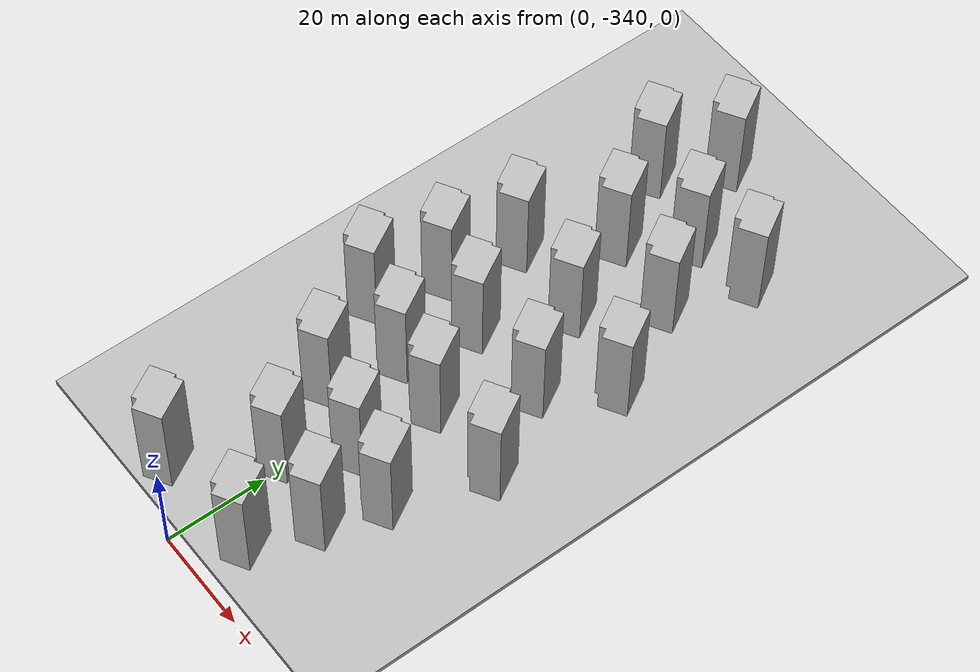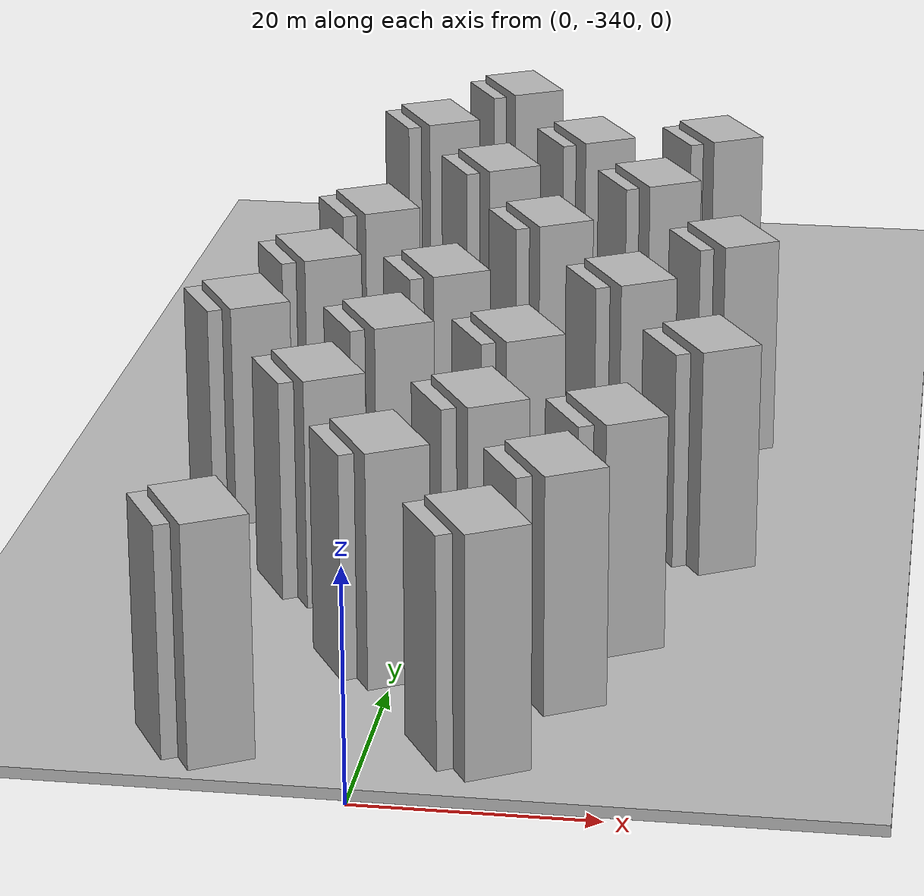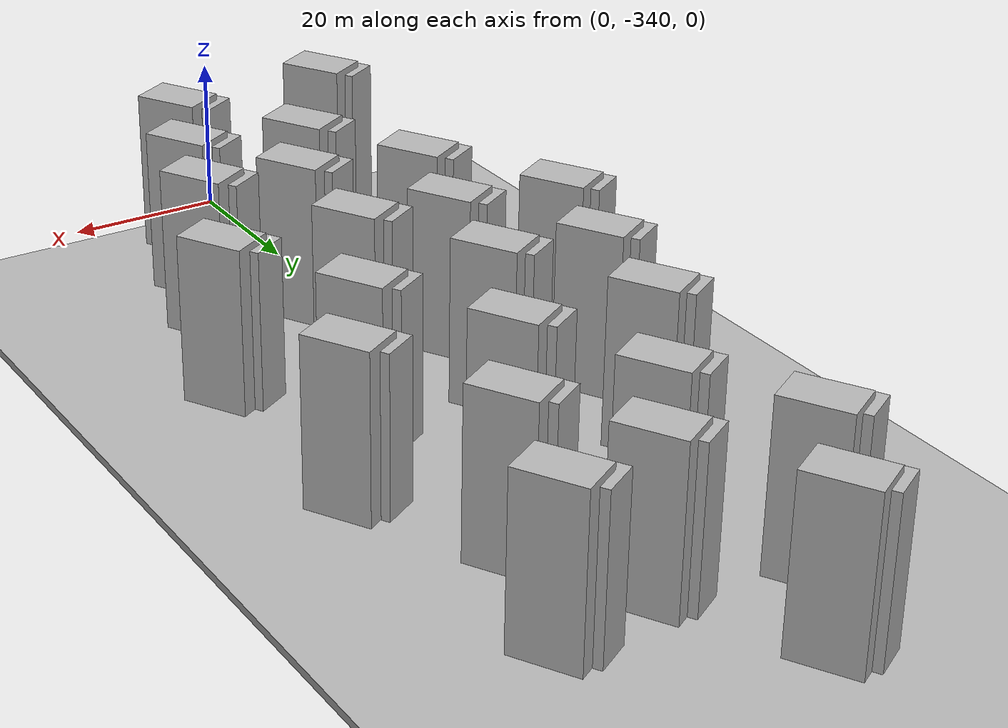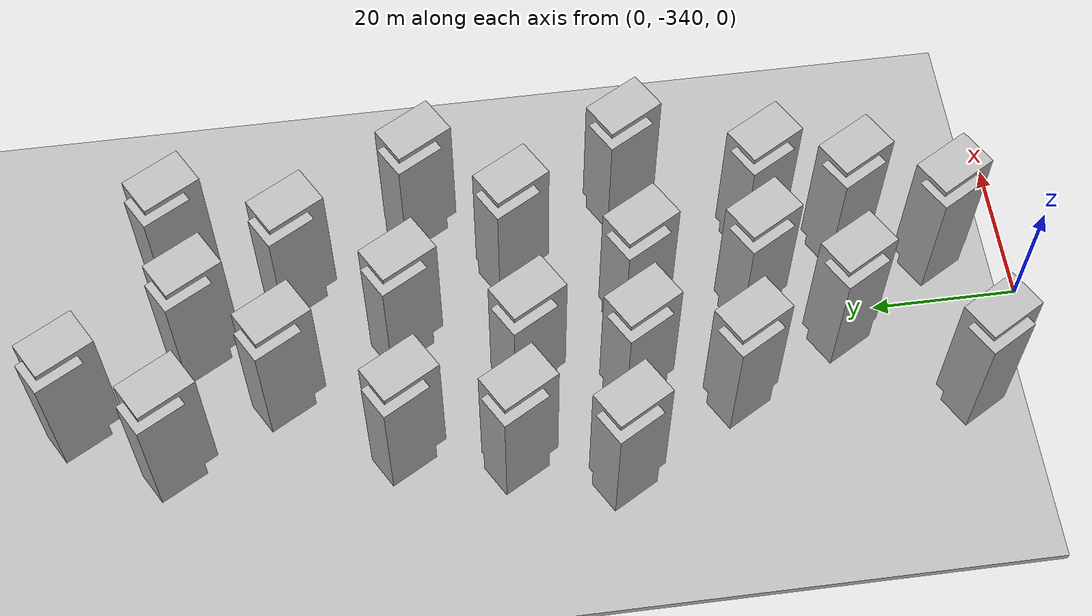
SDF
<sdf version="1.7">
 <world name="default">
  <model name="ground_plane">
   <static>1</static>
   <link name="link">
    <collision name="collision">
     <geometry><mesh><uri>model://ground_plane/scripts/plane.dae</uri><normal>0 0 1</normal></mesh></geometry>
     <surface><friction><ode><mu>100</mu><mu2>50</mu2></ode></friction></surface>
    </collision>
    <visual name="visual">
     <geometry><mesh><uri>model://ground_plane/scripts/plane.dae</uri><normal>0 0 1</normal></mesh></geometry>
     <material>
      <lighting>1</lighting>
      <script><uri>model://ground_plane/scripts/plane.jpg</uri><name>__default__</name></script>
      <shader type="pixel"/>
     </material>
    </visual>
   </link>
  </model>
  <model name="apartment4_clone_13">
   <static>1</static>
   <link name="link_0">
    <inertial>
     <mass>1</mass>
     <inertia>
      <ixx>0.166667</ixx>
      <ixy>0</ixy>
      <ixz>0</ixz>
      <iyy>0.166667</iyy>
      <iyz>0</iyz>
      <izz>0.166667</izz>
     </inertia>
    </inertial>
    <pose>1e-06 -0 0 0 -0 0</pose>
    <visual name="visual">
     <geometry>
      <mesh><uri>model://apartment4/scripts/apartment1.dae</uri><scale>0.14 0.14 0.175</scale></mesh>
     </geometry>
     <material>
      <lighting>1</lighting>
      <script><uri>model://apartment4/scripts/apartment1.jpg</uri><name>__default__</name></script>
      <shader type="pixel"/>
     </material>
    </visual>
    <collision name="collision">
     <geometry>
      <mesh><uri>model://apartment4/scripts/apartment1.dae</uri><scale>0.14 0.14 0.175</scale></mesh>
     </geometry>
     <surface>
      <friction>
       <ode><mu>1</mu><mu2>1</mu2><fdir1>0 0 0</fdir1><slip1>0</slip1><slip2>0</slip2></ode>
       <torsional>
        <coefficient>1</coefficient>
        <patch_radius>0</patch_radius>
        <surface_radius>0</surface_radius>
        <use_patch_radius>1</use_patch_radius>
        <ode><slip>0</slip></ode>
       </torsional>
      </friction>
      <bounce><restitution_coefficient>0</restitution_coefficient><threshold>1e+06</threshold></bounce>
      <contact>
       <collide_without_contact>0</collide_without_contact>
       <collide_without_contact_bitmask>1</collide_without_contact_bitmask>
       <collide_bitmask>1</collide_bitmask>
       <ode>
        <soft_cfm>0</soft_cfm>
        <soft_erp>0.2</soft_erp>
        <kp>1e+13</kp>
        <kd>1</kd>
        <max_vel>0.01</max_vel>
        <min_depth>0</min_depth>
       </ode>
       <bullet>
        <split_impulse>1</split_impulse>
        <split_impulse_penetration_threshold>-0.01</split_impulse_penetration_threshold>
        <soft_cfm>0</soft_cfm>
        <soft_erp>0.2</soft_erp>
        <kp>1e+13</kp>
        <kd>1</kd>
       </bullet>
      </contact>
     </surface>
    </collision>
   </link>
   <static>0</static>
   <pose>19.4961 -226.285 0 0 -0 0.524325</pose>
  </model>
  <model name="apartment4_clone_25">
   <static>1</static>
   <link name="link_0">
    <inertial>
     <mass>1</mass>
     <inertia>
      <ixx>0.166667</ixx>
      <ixy>0</ixy>
      <ixz>0</ixz>
      <iyy>0.166667</iyy>
      <iyz>0</iyz>
      <izz>0.166667</izz>
     </inertia>
    </inertial>
    <pose>1e-06 -0 0 0 -0 0</pose>
    <visual name="visual">
     <geometry>
      <mesh><uri>model://apartment4/scripts/apartment1.dae</uri><scale>0.14 0.14 0.175</scale></mesh>
     </geometry>
     <material>
      <lighting>1</lighting>
      <script><uri>model://apartment4/scripts/apartment1.jpg</uri><name>__default__</name></script>
      <shader type="pixel"/>
     </material>
    </visual>
    <collision name="collision">
     <geometry>
      <mesh><uri>model://apartment4/scripts/apartment1.dae</uri><scale>0.14 0.14 0.175</scale></mesh>
     </geometry>
     <surface>
      <friction>
       <ode><mu>1</mu><mu2>1</mu2><fdir1>0 0 0</fdir1><slip1>0</slip1><slip2>0</slip2></ode>
       <torsional>
        <coefficient>1</coefficient>
        <patch_radius>0</patch_radius>
        <surface_radius>0</surface_radius>
        <use_patch_radius>1</use_patch_radius>
        <ode><slip>0</slip></ode>
       </torsional>
      </friction>
      <bounce><restitution_coefficient>0</restitution_coefficient><threshold>1e+06</threshold></bounce>
      <contact>
       <collide_without_contact>0</collide_without_contact>
       <collide_without_contact_bitmask>1</collide_without_contact_bitmask>
       <collide_bitmask>1</collide_bitmask>
       <ode>
        <soft_cfm>0</soft_cfm>
        <soft_erp>0.2</soft_erp>
        <kp>1e+13</kp>
        <kd>1</kd>
        <max_vel>0.01</max_vel>
        <min_depth>0</min_depth>
       </ode>
       <bullet>
        <split_impulse>1</split_impulse>
        <split_impulse_penetration_threshold>-0.01</split_impulse_penetration_threshold>
        <soft_cfm>0</soft_cfm>
        <soft_erp>0.2</soft_erp>
        <kp>1e+13</kp>
        <kd>1</kd>
       </bullet>
      </contact>
     </surface>
    </collision>
   </link>
   <static>0</static>
   <pose>-3.03098 -212.085 0 0 -0 0.524325</pose>
  </model>
  <model name="apartment4_clone_26">
   <static>1</static>
   <link name="link_0">
    <inertial>
     <mass>1</mass>
     <inertia>
      <ixx>0.166667</ixx>
      <ixy>0</ixy>
      <ixz>0</ixz>
      <iyy>0.166667</iyy>
      <iyz>0</iyz>
      <izz>0.166667</izz>
     </inertia>
    </inertial>
    <pose>1e-06 -0 0 0 -0 0</pose>
    <visual name="visual">
     <geometry>
      <mesh><uri>model://apartment4/scripts/apartment1.dae</uri><scale>0.14 0.14 0.175</scale></mesh>
     </geometry>
     <material>
      <lighting>1</lighting>
      <script><uri>model://apartment4/scripts/apartment1.jpg</uri><name>__default__</name></script>
      <shader type="pixel"/>
     </material>
    </visual>
    <collision name="collision">
     <geometry>
      <mesh><uri>model://apartment4/scripts/apartment1.dae</uri><scale>0.14 0.14 0.175</scale></mesh>
     </geometry>
     <surface>
      <friction>
       <ode><mu>1</mu><mu2>1</mu2><fdir1>0 0 0</fdir1><slip1>0</slip1><slip2>0</slip2></ode>
       <torsional>
        <coefficient>1</coefficient>
        <patch_radius>0</patch_radius>
        <surface_radius>0</surface_radius>
        <use_patch_radius>1</use_patch_radius>
        <ode><slip>0</slip></ode>
       </torsional>
      </friction>
      <bounce><restitution_coefficient>0</restitution_coefficient><threshold>1e+06</threshold></bounce>
      <contact>
       <collide_without_contact>0</collide_without_contact>
       <collide_without_contact_bitmask>1</collide_without_contact_bitmask>
       <collide_bitmask>1</collide_bitmask>
       <ode>
        <soft_cfm>0</soft_cfm>
        <soft_erp>0.2</soft_erp>
        <kp>1e+13</kp>
        <kd>1</kd>
        <max_vel>0.01</max_vel>
        <min_depth>0</min_depth>
       </ode>
       <bullet>
        <split_impulse>1</split_impulse>
        <split_impulse_penetration_threshold>-0.01</split_impulse_penetration_threshold>
        <soft_cfm>0</soft_cfm>
        <soft_erp>0.2</soft_erp>
        <kp>1e+13</kp>
        <kd>1</kd>
       </bullet>
      </contact>
     </surface>
    </collision>
   </link>
   <static>0</static>
   <pose>6.47946 -228.524 0 0 -0 0.524325</pose>
  </model>
  <model name="apartment4_clone_27">
   <static>1</static>
   <link name="link_0">
    <inertial>
     <mass>1</mass>
     <inertia>
      <ixx>0.166667</ixx>
      <ixy>0</ixy>
      <ixz>0</ixz>
      <iyy>0.166667</iyy>
      <iyz>0</iyz>
      <izz>0.166667</izz>
     </inertia>
    </inertial>
    <pose>1e-06 -0 0 0 -0 0</pose>
    <visual name="visual">
     <geometry>
      <mesh><uri>model://apartment4/scripts/apartment1.dae</uri><scale>0.14 0.14 0.175</scale></mesh>
     </geometry>
     <material>
      <lighting>1</lighting>
      <script><uri>model://apartment4/scripts/apartment1.jpg</uri><name>__default__</name></script>
      <shader type="pixel"/>
     </material>
    </visual>
    <collision name="collision">
     <geometry>
      <mesh><uri>model://apartment4/scripts/apartment1.dae</uri><scale>0.14 0.14 0.175</scale></mesh>
     </geometry>
     <surface>
      <friction>
       <ode><mu>1</mu><mu2>1</mu2><fdir1>0 0 0</fdir1><slip1>0</slip1><slip2>0</slip2></ode>
       <torsional>
        <coefficient>1</coefficient>
        <patch_radius>0</patch_radius>
        <surface_radius>0</surface_radius>
        <use_patch_radius>1</use_patch_radius>
        <ode><slip>0</slip></ode>
       </torsional>
      </friction>
      <bounce><restitution_coefficient>0</restitution_coefficient><threshold>1e+06</threshold></bounce>
      <contact>
       <collide_without_contact>0</collide_without_contact>
       <collide_without_contact_bitmask>1</collide_without_contact_bitmask>
       <collide_bitmask>1</collide_bitmask>
       <ode>
        <soft_cfm>0</soft_cfm>
        <soft_erp>0.2</soft_erp>
        <kp>1e+13</kp>
        <kd>1</kd>
        <max_vel>0.01</max_vel>
        <min_depth>0</min_depth>
       </ode>
       <bullet>
        <split_impulse>1</split_impulse>
        <split_impulse_penetration_threshold>-0.01</split_impulse_penetration_threshold>
        <soft_cfm>0</soft_cfm>
        <soft_erp>0.2</soft_erp>
        <kp>1e+13</kp>
        <kd>1</kd>
       </bullet>
      </contact>
     </surface>
    </collision>
   </link>
   <static>0</static>
   <pose>14.4374 -242.142 0 0 -0 0.524325</pose>
  </model>
  <model name="apartment4_clone_28">
   <static>1</static>
   <link name="link_0">
    <inertial>
     <mass>1</mass>
     <inertia>
      <ixx>0.166667</ixx>
      <ixy>0</ixy>
      <ixz>0</ixz>
      <iyy>0.166667</iyy>
      <iyz>0</iyz>
      <izz>0.166667</izz>
     </inertia>
    </inertial>
    <pose>1e-06 -0 0 0 -0 0</pose>
    <visual name="visual">
     <geometry>
      <mesh><uri>model://apartment4/scripts/apartment1.dae</uri><scale>0.14 0.14 0.175</scale></mesh>
     </geometry>
     <material>
      <lighting>1</lighting>
      <script><uri>model://apartment4/scripts/apartment1.jpg</uri><name>__default__</name></script>
      <shader type="pixel"/>
     </material>
    </visual>
    <collision name="collision">
     <geometry>
      <mesh><uri>model://apartment4/scripts/apartment1.dae</uri><scale>0.14 0.14 0.175</scale></mesh>
     </geometry>
     <surface>
      <friction>
       <ode><mu>1</mu><mu2>1</mu2><fdir1>0 0 0</fdir1><slip1>0</slip1><slip2>0</slip2></ode>
       <torsional>
        <coefficient>1</coefficient>
        <patch_radius>0</patch_radius>
        <surface_radius>0</surface_radius>
        <use_patch_radius>1</use_patch_radius>
        <ode><slip>0</slip></ode>
       </torsional>
      </friction>
      <bounce><restitution_coefficient>0</restitution_coefficient><threshold>1e+06</threshold></bounce>
      <contact>
       <collide_without_contact>0</collide_without_contact>
       <collide_without_contact_bitmask>1</collide_without_contact_bitmask>
       <collide_bitmask>1</collide_bitmask>
       <ode>
        <soft_cfm>0</soft_cfm>
        <soft_erp>0.2</soft_erp>
        <kp>1e+13</kp>
        <kd>1</kd>
        <max_vel>0.01</max_vel>
        <min_depth>0</min_depth>
       </ode>
       <bullet>
        <split_impulse>1</split_impulse>
        <split_impulse_penetration_threshold>-0.01</split_impulse_penetration_threshold>
        <soft_cfm>0</soft_cfm>
        <soft_erp>0.2</soft_erp>
        <kp>1e+13</kp>
        <kd>1</kd>
       </bullet>
      </contact>
     </surface>
    </collision>
   </link>
   <static>0</static>
   <pose>23.2909 -259.783 0 0 -0 0.524325</pose>
  </model>
  <model name="apartment4_clone_39">
   <static>1</static>
   <link name="link_0">
    <inertial>
     <mass>1</mass>
     <inertia>
      <ixx>0.166667</ixx>
      <ixy>0</ixy>
      <ixz>0</ixz>
      <iyy>0.166667</iyy>
      <iyz>0</iyz>
      <izz>0.166667</izz>
     </inertia>
    </inertial>
    <pose>1e-06 -0 0 0 -0 0</pose>
    <visual name="visual">
     <geometry>
      <mesh><uri>model://apartment4/scripts/apartment1.dae</uri><scale>0.14 0.14 0.175</scale></mesh>
     </geometry>
     <material>
      <lighting>1</lighting>
      <script><uri>model://apartment4/scripts/apartment1.jpg</uri><name>__default__</name></script>
      <shader type="pixel"/>
     </material>
    </visual>
    <collision name="collision">
     <geometry>
      <mesh><uri>model://apartment4/scripts/apartment1.dae</uri><scale>0.14 0.14 0.175</scale></mesh>
     </geometry>
     <surface>
      <friction>
       <ode><mu>1</mu><mu2>1</mu2><fdir1>0 0 0</fdir1><slip1>0</slip1><slip2>0</slip2></ode>
       <torsional>
        <coefficient>1</coefficient>
        <patch_radius>0</patch_radius>
        <surface_radius>0</surface_radius>
        <use_patch_radius>1</use_patch_radius>
        <ode><slip>0</slip></ode>
       </torsional>
      </friction>
      <bounce><restitution_coefficient>0</restitution_coefficient><threshold>1e+06</threshold></bounce>
      <contact>
       <collide_without_contact>0</collide_without_contact>
       <collide_without_contact_bitmask>1</collide_without_contact_bitmask>
       <collide_bitmask>1</collide_bitmask>
       <ode>
        <soft_cfm>0</soft_cfm>
        <soft_erp>0.2</soft_erp>
        <kp>1e+13</kp>
        <kd>1</kd>
        <max_vel>0.01</max_vel>
        <min_depth>0</min_depth>
       </ode>
       <bullet>
        <split_impulse>1</split_impulse>
        <split_impulse_penetration_threshold>-0.01</split_impulse_penetration_threshold>
        <soft_cfm>0</soft_cfm>
        <soft_erp>0.2</soft_erp>
        <kp>1e+13</kp>
        <kd>1</kd>
       </bullet>
      </contact>
     </surface>
    </collision>
   </link>
   <static>0</static>
   <pose>-10.395 -224.415 0 0 -0 0.524325</pose>
  </model>
  <model name="apartment4_clone_40">
   <static>1</static>
   <link name="link_0">
    <inertial>
     <mass>1</mass>
     <inertia>
      <ixx>0.166667</ixx>
      <ixy>0</ixy>
      <ixz>0</ixz>
      <iyy>0.166667</iyy>
      <iyz>0</iyz>
      <izz>0.166667</izz>
     </inertia>
    </inertial>
    <pose>1e-06 -0 0 0 -0 0</pose>
    <visual name="visual">
     <geometry>
      <mesh><uri>model://apartment4/scripts/apartment1.dae</uri><scale>0.14 0.14 0.175</scale></mesh>
     </geometry>
     <material>
      <lighting>1</lighting>
      <script><uri>model://apartment4/scripts/apartment1.jpg</uri><name>__default__</name></script>
      <shader type="pixel"/>
     </material>
    </visual>
    <collision name="collision">
     <geometry>
      <mesh><uri>model://apartment4/scripts/apartment1.dae</uri><scale>0.14 0.14 0.175</scale></mesh>
     </geometry>
     <surface>
      <friction>
       <ode><mu>1</mu><mu2>1</mu2><fdir1>0 0 0</fdir1><slip1>0</slip1><slip2>0</slip2></ode>
       <torsional>
        <coefficient>1</coefficient>
        <patch_radius>0</patch_radius>
        <surface_radius>0</surface_radius>
        <use_patch_radius>1</use_patch_radius>
        <ode><slip>0</slip></ode>
       </torsional>
      </friction>
      <bounce><restitution_coefficient>0</restitution_coefficient><threshold>1e+06</threshold></bounce>
      <contact>
       <collide_without_contact>0</collide_without_contact>
       <collide_without_contact_bitmask>1</collide_without_contact_bitmask>
       <collide_bitmask>1</collide_bitmask>
       <ode>
        <soft_cfm>0</soft_cfm>
        <soft_erp>0.2</soft_erp>
        <kp>1e+13</kp>
        <kd>1</kd>
        <max_vel>0.01</max_vel>
        <min_depth>0</min_depth>
       </ode>
       <bullet>
        <split_impulse>1</split_impulse>
        <split_impulse_penetration_threshold>-0.01</split_impulse_penetration_threshold>
        <soft_cfm>0</soft_cfm>
        <soft_erp>0.2</soft_erp>
        <kp>1e+13</kp>
        <kd>1</kd>
       </bullet>
      </contact>
     </surface>
    </collision>
   </link>
   <static>0</static>
   <pose>-2.00526 -239.363 0 0 -0 0.524325</pose>
  </model>
  <model name="apartment4_clone_41">
   <static>1</static>
   <link name="link_0">
    <inertial>
     <mass>1</mass>
     <inertia>
      <ixx>0.166667</ixx>
      <ixy>0</ixy>
      <ixz>0</ixz>
      <iyy>0.166667</iyy>
      <iyz>0</iyz>
      <izz>0.166667</izz>
     </inertia>
    </inertial>
    <pose>1e-06 -0 0 0 -0 0</pose>
    <visual name="visual">
     <geometry>
      <mesh><uri>model://apartment4/scripts/apartment1.dae</uri><scale>0.14 0.14 0.175</scale></mesh>
     </geometry>
     <material>
      <lighting>1</lighting>
      <script><uri>model://apartment4/scripts/apartment1.jpg</uri><name>__default__</name></script>
      <shader type="pixel"/>
     </material>
    </visual>
    <collision name="collision">
     <geometry>
      <mesh><uri>model://apartment4/scripts/apartment1.dae</uri><scale>0.14 0.14 0.175</scale></mesh>
     </geometry>
     <surface>
      <friction>
       <ode><mu>1</mu><mu2>1</mu2><fdir1>0 0 0</fdir1><slip1>0</slip1><slip2>0</slip2></ode>
       <torsional>
        <coefficient>1</coefficient>
        <patch_radius>0</patch_radius>
        <surface_radius>0</surface_radius>
        <use_patch_radius>1</use_patch_radius>
        <ode><slip>0</slip></ode>
       </torsional>
      </friction>
      <bounce><restitution_coefficient>0</restitution_coefficient><threshold>1e+06</threshold></bounce>
      <contact>
       <collide_without_contact>0</collide_without_contact>
       <collide_without_contact_bitmask>1</collide_without_contact_bitmask>
       <collide_bitmask>1</collide_bitmask>
       <ode>
        <soft_cfm>0</soft_cfm>
        <soft_erp>0.2</soft_erp>
        <kp>1e+13</kp>
        <kd>1</kd>
        <max_vel>0.01</max_vel>
        <min_depth>0</min_depth>
       </ode>
       <bullet>
        <split_impulse>1</split_impulse>
        <split_impulse_penetration_threshold>-0.01</split_impulse_penetration_threshold>
        <soft_cfm>0</soft_cfm>
        <soft_erp>0.2</soft_erp>
        <kp>1e+13</kp>
        <kd>1</kd>
       </bullet>
      </contact>
     </surface>
    </collision>
   </link>
   <static>0</static>
   <pose>5.21363 -255.983 0 0 -0 0.524325</pose>
  </model>
  <model name="apartment4_clone_42">
   <static>1</static>
   <link name="link_0">
    <inertial>
     <mass>1</mass>
     <inertia>
      <ixx>0.166667</ixx>
      <ixy>0</ixy>
      <ixz>0</ixz>
      <iyy>0.166667</iyy>
      <iyz>0</iyz>
      <izz>0.166667</izz>
     </inertia>
    </inertial>
    <pose>1e-06 -0 0 0 -0 0</pose>
    <visual name="visual">
     <geometry>
      <mesh><uri>model://apartment4/scripts/apartment1.dae</uri><scale>0.14 0.14 0.175</scale></mesh>
     </geometry>
     <material>
      <lighting>1</lighting>
      <script><uri>model://apartment4/scripts/apartment1.jpg</uri><name>__default__</name></script>
      <shader type="pixel"/>
     </material>
    </visual>
    <collision name="collision">
     <geometry>
      <mesh><uri>model://apartment4/scripts/apartment1.dae</uri><scale>0.14 0.14 0.175</scale></mesh>
     </geometry>
     <surface>
      <friction>
       <ode><mu>1</mu><mu2>1</mu2><fdir1>0 0 0</fdir1><slip1>0</slip1><slip2>0</slip2></ode>
       <torsional>
        <coefficient>1</coefficient>
        <patch_radius>0</patch_radius>
        <surface_radius>0</surface_radius>
        <use_patch_radius>1</use_patch_radius>
        <ode><slip>0</slip></ode>
       </torsional>
      </friction>
      <bounce><restitution_coefficient>0</restitution_coefficient><threshold>1e+06</threshold></bounce>
      <contact>
       <collide_without_contact>0</collide_without_contact>
       <collide_without_contact_bitmask>1</collide_without_contact_bitmask>
       <collide_bitmask>1</collide_bitmask>
       <ode>
        <soft_cfm>0</soft_cfm>
        <soft_erp>0.2</soft_erp>
        <kp>1e+13</kp>
        <kd>1</kd>
        <max_vel>0.01</max_vel>
        <min_depth>0</min_depth>
       </ode>
       <bullet>
        <split_impulse>1</split_impulse>
        <split_impulse_penetration_threshold>-0.01</split_impulse_penetration_threshold>
        <soft_cfm>0</soft_cfm>
        <soft_erp>0.2</soft_erp>
        <kp>1e+13</kp>
        <kd>1</kd>
       </bullet>
      </contact>
     </surface>
    </collision>
   </link>
   <static>0</static>
   <pose>14.7324 -271.846 0 0 -0 0.524325</pose>
  </model>
  <model name="apartment4_clone_43">
   <static>1</static>
   <link name="link_0">
    <inertial>
     <mass>1</mass>
     <inertia>
      <ixx>0.166667</ixx>
      <ixy>0</ixy>
      <ixz>0</ixz>
      <iyy>0.166667</iyy>
      <iyz>0</iyz>
      <izz>0.166667</izz>
     </inertia>
    </inertial>
    <pose>1e-06 -0 0 0 -0 0</pose>
    <visual name="visual">
     <geometry>
      <mesh><uri>model://apartment4/scripts/apartment1.dae</uri><scale>0.14 0.14 0.175</scale></mesh>
     </geometry>
     <material>
      <lighting>1</lighting>
      <script><uri>model://apartment4/scripts/apartment1.jpg</uri><name>__default__</name></script>
      <shader type="pixel"/>
     </material>
    </visual>
    <collision name="collision">
     <geometry>
      <mesh><uri>model://apartment4/scripts/apartment1.dae</uri><scale>0.14 0.14 0.175</scale></mesh>
     </geometry>
     <surface>
      <friction>
       <ode><mu>1</mu><mu2>1</mu2><fdir1>0 0 0</fdir1><slip1>0</slip1><slip2>0</slip2></ode>
       <torsional>
        <coefficient>1</coefficient>
        <patch_radius>0</patch_radius>
        <surface_radius>0</surface_radius>
        <use_patch_radius>1</use_patch_radius>
        <ode><slip>0</slip></ode>
       </torsional>
      </friction>
      <bounce><restitution_coefficient>0</restitution_coefficient><threshold>1e+06</threshold></bounce>
      <contact>
       <collide_without_contact>0</collide_without_contact>
       <collide_without_contact_bitmask>1</collide_without_contact_bitmask>
       <collide_bitmask>1</collide_bitmask>
       <ode>
        <soft_cfm>0</soft_cfm>
        <soft_erp>0.2</soft_erp>
        <kp>1e+13</kp>
        <kd>1</kd>
        <max_vel>0.01</max_vel>
        <min_depth>0</min_depth>
       </ode>
       <bullet>
        <split_impulse>1</split_impulse>
        <split_impulse_penetration_threshold>-0.01</split_impulse_penetration_threshold>
        <soft_cfm>0</soft_cfm>
        <soft_erp>0.2</soft_erp>
        <kp>1e+13</kp>
        <kd>1</kd>
       </bullet>
      </contact>
     </surface>
    </collision>
   </link>
   <static>0</static>
   <pose>23.5737 -288.17 0 0 -0 0.524325</pose>
  </model>
  <model name="apartment4_clone_47">
   <static>1</static>
   <link name="link_0">
    <inertial>
     <mass>1</mass>
     <inertia>
      <ixx>0.166667</ixx>
      <ixy>0</ixy>
      <ixz>0</ixz>
      <iyy>0.166667</iyy>
      <iyz>0</iyz>
      <izz>0.166667</izz>
     </inertia>
    </inertial>
    <pose>1e-06 -0 0 0 -0 0</pose>
    <visual name="visual">
     <geometry>
      <mesh><uri>model://apartment4/scripts/apartment1.dae</uri><scale>0.14 0.14 0.175</scale></mesh>
     </geometry>
     <material>
      <lighting>1</lighting>
      <script><uri>model://apartment4/scripts/apartment1.jpg</uri><name>__default__</name></script>
      <shader type="pixel"/>
     </material>
    </visual>
    <collision name="collision">
     <geometry>
      <mesh><uri>model://apartment4/scripts/apartment1.dae</uri><scale>0.14 0.14 0.175</scale></mesh>
     </geometry>
     <surface>
      <friction>
       <ode><mu>1</mu><mu2>1</mu2><fdir1>0 0 0</fdir1><slip1>0</slip1><slip2>0</slip2></ode>
       <torsional>
        <coefficient>1</coefficient>
        <patch_radius>0</patch_radius>
        <surface_radius>0</surface_radius>
        <use_patch_radius>1</use_patch_radius>
        <ode><slip>0</slip></ode>
       </torsional>
      </friction>
      <bounce><restitution_coefficient>0</restitution_coefficient><threshold>1e+06</threshold></bounce>
      <contact>
       <collide_without_contact>0</collide_without_contact>
       <collide_without_contact_bitmask>1</collide_without_contact_bitmask>
       <collide_bitmask>1</collide_bitmask>
       <ode>
        <soft_cfm>0</soft_cfm>
        <soft_erp>0.2</soft_erp>
        <kp>1e+13</kp>
        <kd>1</kd>
        <max_vel>0.01</max_vel>
        <min_depth>0</min_depth>
       </ode>
       <bullet>
        <split_impulse>1</split_impulse>
        <split_impulse_penetration_threshold>-0.01</split_impulse_penetration_threshold>
        <soft_cfm>0</soft_cfm>
        <soft_erp>0.2</soft_erp>
        <kp>1e+13</kp>
        <kd>1</kd>
       </bullet>
      </contact>
     </surface>
    </collision>
   </link>
   <static>0</static>
   <pose>17.1324 -306.165 0 0 -0 0.524325</pose>
  </model>
  <model name="apartment4_clone_48">
   <static>1</static>
   <link name="link_0">
    <inertial>
     <mass>1</mass>
     <inertia>
      <ixx>0.166667</ixx>
      <ixy>0</ixy>
      <ixz>0</ixz>
      <iyy>0.166667</iyy>
      <iyz>0</iyz>
      <izz>0.166667</izz>
     </inertia>
    </inertial>
    <pose>1e-06 -0 0 0 -0 0</pose>
    <visual name="visual">
     <geometry>
      <mesh><uri>model://apartment4/scripts/apartment1.dae</uri><scale>0.14 0.14 0.175</scale></mesh>
     </geometry>
     <material>
      <lighting>1</lighting>
      <script><uri>model://apartment4/scripts/apartment1.jpg</uri><name>__default__</name></script>
      <shader type="pixel"/>
     </material>
    </visual>
    <collision name="collision">
     <geometry>
      <mesh><uri>model://apartment4/scripts/apartment1.dae</uri><scale>0.14 0.14 0.175</scale></mesh>
     </geometry>
     <surface>
      <friction>
       <ode><mu>1</mu><mu2>1</mu2><fdir1>0 0 0</fdir1><slip1>0</slip1><slip2>0</slip2></ode>
       <torsional>
        <coefficient>1</coefficient>
        <patch_radius>0</patch_radius>
        <surface_radius>0</surface_radius>
        <use_patch_radius>1</use_patch_radius>
        <ode><slip>0</slip></ode>
       </torsional>
      </friction>
      <bounce><restitution_coefficient>0</restitution_coefficient><threshold>1e+06</threshold></bounce>
      <contact>
       <collide_without_contact>0</collide_without_contact>
       <collide_without_contact_bitmask>1</collide_without_contact_bitmask>
       <collide_bitmask>1</collide_bitmask>
       <ode>
        <soft_cfm>0</soft_cfm>
        <soft_erp>0.2</soft_erp>
        <kp>1e+13</kp>
        <kd>1</kd>
        <max_vel>0.01</max_vel>
        <min_depth>0</min_depth>
       </ode>
       <bullet>
        <split_impulse>1</split_impulse>
        <split_impulse_penetration_threshold>-0.01</split_impulse_penetration_threshold>
        <soft_cfm>0</soft_cfm>
        <soft_erp>0.2</soft_erp>
        <kp>1e+13</kp>
        <kd>1</kd>
       </bullet>
      </contact>
     </surface>
    </collision>
   </link>
   <static>0</static>
   <pose>6.3882 -287.898 0 0 -0 0.524325</pose>
  </model>
  <model name="apartment4_clone_49">
   <static>1</static>
   <link name="link_0">
    <inertial>
     <mass>1</mass>
     <inertia>
      <ixx>0.166667</ixx>
      <ixy>0</ixy>
      <ixz>0</ixz>
      <iyy>0.166667</iyy>
      <iyz>0</iyz>
      <izz>0.166667</izz>
     </inertia>
    </inertial>
    <pose>1e-06 -0 0 0 -0 0</pose>
    <visual name="visual">
     <geometry>
      <mesh><uri>model://apartment4/scripts/apartment1.dae</uri><scale>0.14 0.14 0.175</scale></mesh>
     </geometry>
     <material>
      <lighting>1</lighting>
      <script><uri>model://apartment4/scripts/apartment1.jpg</uri><name>__default__</name></script>
      <shader type="pixel"/>
     </material>
    </visual>
    <collision name="collision">
     <geometry>
      <mesh><uri>model://apartment4/scripts/apartment1.dae</uri><scale>0.14 0.14 0.175</scale></mesh>
     </geometry>
     <surface>
      <friction>
       <ode><mu>1</mu><mu2>1</mu2><fdir1>0 0 0</fdir1><slip1>0</slip1><slip2>0</slip2></ode>
       <torsional>
        <coefficient>1</coefficient>
        <patch_radius>0</patch_radius>
        <surface_radius>0</surface_radius>
        <use_patch_radius>1</use_patch_radius>
        <ode><slip>0</slip></ode>
       </torsional>
      </friction>
      <bounce><restitution_coefficient>0</restitution_coefficient><threshold>1e+06</threshold></bounce>
      <contact>
       <collide_without_contact>0</collide_without_contact>
       <collide_without_contact_bitmask>1</collide_without_contact_bitmask>
       <collide_bitmask>1</collide_bitmask>
       <ode>
        <soft_cfm>0</soft_cfm>
        <soft_erp>0.2</soft_erp>
        <kp>1e+13</kp>
        <kd>1</kd>
        <max_vel>0.01</max_vel>
        <min_depth>0</min_depth>
       </ode>
       <bullet>
        <split_impulse>1</split_impulse>
        <split_impulse_penetration_threshold>-0.01</split_impulse_penetration_threshold>
        <soft_cfm>0</soft_cfm>
        <soft_erp>0.2</soft_erp>
        <kp>1e+13</kp>
        <kd>1</kd>
       </bullet>
      </contact>
     </surface>
    </collision>
   </link>
   <static>0</static>
   <pose>-2.55813 -271.862 0 0 -0 0.524325</pose>
  </model>
  <model name="apartment4_clone_50">
   <static>1</static>
   <link name="link_0">
    <inertial>
     <mass>1</mass>
     <inertia>
      <ixx>0.166667</ixx>
      <ixy>0</ixy>
      <ixz>0</ixz>
      <iyy>0.166667</iyy>
      <iyz>0</iyz>
      <izz>0.166667</izz>
     </inertia>
    </inertial>
    <pose>1e-06 -0 0 0 -0 0</pose>
    <visual name="visual">
     <geometry>
      <mesh><uri>model://apartment4/scripts/apartment1.dae</uri><scale>0.14 0.14 0.175</scale></mesh>
     </geometry>
     <material>
      <lighting>1</lighting>
      <script><uri>model://apartment4/scripts/apartment1.jpg</uri><name>__default__</name></script>
      <shader type="pixel"/>
     </material>
    </visual>
    <collision name="collision">
     <geometry>
      <mesh><uri>model://apartment4/scripts/apartment1.dae</uri><scale>0.14 0.14 0.175</scale></mesh>
     </geometry>
     <surface>
      <friction>
       <ode><mu>1</mu><mu2>1</mu2><fdir1>0 0 0</fdir1><slip1>0</slip1><slip2>0</slip2></ode>
       <torsional>
        <coefficient>1</coefficient>
        <patch_radius>0</patch_radius>
        <surface_radius>0</surface_radius>
        <use_patch_radius>1</use_patch_radius>
        <ode><slip>0</slip></ode>
       </torsional>
      </friction>
      <bounce><restitution_coefficient>0</restitution_coefficient><threshold>1e+06</threshold></bounce>
      <contact>
       <collide_without_contact>0</collide_without_contact>
       <collide_without_contact_bitmask>1</collide_without_contact_bitmask>
       <collide_bitmask>1</collide_bitmask>
       <ode>
        <soft_cfm>0</soft_cfm>
        <soft_erp>0.2</soft_erp>
        <kp>1e+13</kp>
        <kd>1</kd>
        <max_vel>0.01</max_vel>
        <min_depth>0</min_depth>
       </ode>
       <bullet>
        <split_impulse>1</split_impulse>
        <split_impulse_penetration_threshold>-0.01</split_impulse_penetration_threshold>
        <soft_cfm>0</soft_cfm>
        <soft_erp>0.2</soft_erp>
        <kp>1e+13</kp>
        <kd>1</kd>
       </bullet>
      </contact>
     </surface>
    </collision>
   </link>
   <static>0</static>
   <pose>-11.9298 -254.573 0 0 -0 0.524325</pose>
  </model>
  <model name="apartment4_clone_79">
   <static>1</static>
   <link name="link_0">
    <inertial>
     <mass>1</mass>
     <inertia>
      <ixx>0.166667</ixx>
      <ixy>0</ixy>
      <ixz>0</ixz>
      <iyy>0.166667</iyy>
      <iyz>0</iyz>
      <izz>0.166667</izz>
     </inertia>
    </inertial>
    <pose>1e-06 -0 0 0 -0 0</pose>
    <visual name="visual">
     <geometry>
      <mesh><uri>model://apartment4/scripts/apartment1.dae</uri><scale>0.14 0.14 0.175</scale></mesh>
     </geometry>
     <material>
      <lighting>1</lighting>
      <script><uri>model://apartment4/scripts/apartment1.jpg</uri><name>__default__</name></script>
      <shader type="pixel"/>
     </material>
    </visual>
    <collision name="collision">
     <geometry>
      <mesh><uri>model://apartment4/scripts/apartment1.dae</uri><scale>0.14 0.14 0.175</scale></mesh>
     </geometry>
     <surface>
      <friction>
       <ode><mu>1</mu><mu2>1</mu2><fdir1>0 0 0</fdir1><slip1>0</slip1><slip2>0</slip2></ode>
       <torsional>
        <coefficient>1</coefficient>
        <patch_radius>0</patch_radius>
        <surface_radius>0</surface_radius>
        <use_patch_radius>1</use_patch_radius>
        <ode><slip>0</slip></ode>
       </torsional>
      </friction>
      <bounce><restitution_coefficient>0</restitution_coefficient><threshold>1e+06</threshold></bounce>
      <contact>
       <collide_without_contact>0</collide_without_contact>
       <collide_without_contact_bitmask>1</collide_without_contact_bitmask>
       <collide_bitmask>1</collide_bitmask>
       <ode>
        <soft_cfm>0</soft_cfm>
        <soft_erp>0.2</soft_erp>
        <kp>1e+13</kp>
        <kd>1</kd>
        <max_vel>0.01</max_vel>
        <min_depth>0</min_depth>
       </ode>
       <bullet>
        <split_impulse>1</split_impulse>
        <split_impulse_penetration_threshold>-0.01</split_impulse_penetration_threshold>
        <soft_cfm>0</soft_cfm>
        <soft_erp>0.2</soft_erp>
        <kp>1e+13</kp>
        <kd>1</kd>
       </bullet>
      </contact>
     </surface>
    </collision>
   </link>
   <static>0</static>
   <pose>-12.9403 -331.121 0 0 -0 0.524325</pose>
  </model>
  <model name="apartment4_clone_91">
   <static>1</static>
   <link name="link_0">
    <inertial>
     <mass>1</mass>
     <inertia>
      <ixx>0.166667</ixx>
      <ixy>0</ixy>
      <ixz>0</ixz>
      <iyy>0.166667</iyy>
      <iyz>0</iyz>
      <izz>0.166667</izz>
     </inertia>
    </inertial>
    <pose>1e-06 -0 0 0 -0 0</pose>
    <visual name="visual">
     <geometry>
      <mesh><uri>model://apartment4/scripts/apartment1.dae</uri><scale>0.14 0.14 0.175</scale></mesh>
     </geometry>
     <material>
      <lighting>1</lighting>
      <script><uri>model://apartment4/scripts/apartment1.jpg</uri><name>__default__</name></script>
      <shader type="pixel"/>
     </material>
    </visual>
    <collision name="collision">
     <geometry>
      <mesh><uri>model://apartment4/scripts/apartment1.dae</uri><scale>0.14 0.14 0.175</scale></mesh>
     </geometry>
     <surface>
      <friction>
       <ode><mu>1</mu><mu2>1</mu2><fdir1>0 0 0</fdir1><slip1>0</slip1><slip2>0</slip2></ode>
       <torsional>
        <coefficient>1</coefficient>
        <patch_radius>0</patch_radius>
        <surface_radius>0</surface_radius>
        <use_patch_radius>1</use_patch_radius>
        <ode><slip>0</slip></ode>
       </torsional>
      </friction>
      <bounce><restitution_coefficient>0</restitution_coefficient><threshold>1e+06</threshold></bounce>
      <contact>
       <collide_without_contact>0</collide_without_contact>
       <collide_without_contact_bitmask>1</collide_without_contact_bitmask>
       <collide_bitmask>1</collide_bitmask>
       <ode>
        <soft_cfm>0</soft_cfm>
        <soft_erp>0.2</soft_erp>
        <kp>1e+13</kp>
        <kd>1</kd>
        <max_vel>0.01</max_vel>
        <min_depth>0</min_depth>
       </ode>
       <bullet>
        <split_impulse>1</split_impulse>
        <split_impulse_penetration_threshold>-0.01</split_impulse_penetration_threshold>
        <soft_cfm>0</soft_cfm>
        <soft_erp>0.2</soft_erp>
        <kp>1e+13</kp>
        <kd>1</kd>
       </bullet>
      </contact>
     </surface>
    </collision>
   </link>
   <static>0</static>
   <pose>-15.0923 -269.145 0 0 -0 0.524325</pose>
  </model>
  <model name="apartment4_clone_92">
   <static>1</static>
   <link name="link_0">
    <inertial>
     <mass>1</mass>
     <inertia>
      <ixx>0.166667</ixx>
      <ixy>0</ixy>
      <ixz>0</ixz>
      <iyy>0.166667</iyy>
      <iyz>0</iyz>
      <izz>0.166667</izz>
     </inertia>
    </inertial>
    <pose>1e-06 -0 0 0 -0 0</pose>
    <visual name="visual">
     <geometry>
      <mesh><uri>model://apartment4/scripts/apartment1.dae</uri><scale>0.14 0.14 0.175</scale></mesh>
     </geometry>
     <material>
      <lighting>1</lighting>
      <script><uri>model://apartment4/scripts/apartment1.jpg</uri><name>__default__</name></script>
      <shader type="pixel"/>
     </material>
    </visual>
    <collision name="collision">
     <geometry>
      <mesh><uri>model://apartment4/scripts/apartment1.dae</uri><scale>0.14 0.14 0.175</scale></mesh>
     </geometry>
     <surface>
      <friction>
       <ode><mu>1</mu><mu2>1</mu2><fdir1>0 0 0</fdir1><slip1>0</slip1><slip2>0</slip2></ode>
       <torsional>
        <coefficient>1</coefficient>
        <patch_radius>0</patch_radius>
        <surface_radius>0</surface_radius>
        <use_patch_radius>1</use_patch_radius>
        <ode><slip>0</slip></ode>
       </torsional>
      </friction>
      <bounce><restitution_coefficient>0</restitution_coefficient><threshold>1e+06</threshold></bounce>
      <contact>
       <collide_without_contact>0</collide_without_contact>
       <collide_without_contact_bitmask>1</collide_without_contact_bitmask>
       <collide_bitmask>1</collide_bitmask>
       <ode>
        <soft_cfm>0</soft_cfm>
        <soft_erp>0.2</soft_erp>
        <kp>1e+13</kp>
        <kd>1</kd>
        <max_vel>0.01</max_vel>
        <min_depth>0</min_depth>
       </ode>
       <bullet>
        <split_impulse>1</split_impulse>
        <split_impulse_penetration_threshold>-0.01</split_impulse_penetration_threshold>
        <soft_cfm>0</soft_cfm>
        <soft_erp>0.2</soft_erp>
        <kp>1e+13</kp>
        <kd>1</kd>
       </bullet>
      </contact>
     </surface>
    </collision>
   </link>
   <static>0</static>
   <pose>-19.203 -282.905 0 0 -0 0.524325</pose>
  </model>
  <model name="apartment4_clone_93">
   <static>1</static>
   <link name="link_0">
    <inertial>
     <mass>1</mass>
     <inertia>
      <ixx>0.166667</ixx>
      <ixy>0</ixy>
      <ixz>0</ixz>
      <iyy>0.166667</iyy>
      <iyz>0</iyz>
      <izz>0.166667</izz>
     </inertia>
    </inertial>
    <pose>1e-06 -0 0 0 -0 0</pose>
    <visual name="visual">
     <geometry>
      <mesh><uri>model://apartment4/scripts/apartment1.dae</uri><scale>0.14 0.14 0.175</scale></mesh>
     </geometry>
     <material>
      <lighting>1</lighting>
      <script><uri>model://apartment4/scripts/apartment1.jpg</uri><name>__default__</name></script>
      <shader type="pixel"/>
     </material>
    </visual>
    <collision name="collision">
     <geometry>
      <mesh><uri>model://apartment4/scripts/apartment1.dae</uri><scale>0.14 0.14 0.175</scale></mesh>
     </geometry>
     <surface>
      <friction>
       <ode><mu>1</mu><mu2>1</mu2><fdir1>0 0 0</fdir1><slip1>0</slip1><slip2>0</slip2></ode>
       <torsional>
        <coefficient>1</coefficient>
        <patch_radius>0</patch_radius>
        <surface_radius>0</surface_radius>
        <use_patch_radius>1</use_patch_radius>
        <ode><slip>0</slip></ode>
       </torsional>
      </friction>
      <bounce><restitution_coefficient>0</restitution_coefficient><threshold>1e+06</threshold></bounce>
      <contact>
       <collide_without_contact>0</collide_without_contact>
       <collide_without_contact_bitmask>1</collide_without_contact_bitmask>
       <collide_bitmask>1</collide_bitmask>
       <ode>
        <soft_cfm>0</soft_cfm>
        <soft_erp>0.2</soft_erp>
        <kp>1e+13</kp>
        <kd>1</kd>
        <max_vel>0.01</max_vel>
        <min_depth>0</min_depth>
       </ode>
       <bullet>
        <split_impulse>1</split_impulse>
        <split_impulse_penetration_threshold>-0.01</split_impulse_penetration_threshold>
        <soft_cfm>0</soft_cfm>
        <soft_erp>0.2</soft_erp>
        <kp>1e+13</kp>
        <kd>1</kd>
       </bullet>
      </contact>
     </surface>
    </collision>
   </link>
   <static>0</static>
   <pose>-5.56269 -286.268 0 0 -0 0.524325</pose>
  </model>
  <model name="apartment4_clone_94">
   <static>1</static>
   <link name="link_0">
    <inertial>
     <mass>1</mass>
     <inertia>
      <ixx>0.166667</ixx>
      <ixy>0</ixy>
      <ixz>0</ixz>
      <iyy>0.166667</iyy>
      <iyz>0</iyz>
      <izz>0.166667</izz>
     </inertia>
    </inertial>
    <pose>1e-06 -0 0 0 -0 0</pose>
    <visual name="visual">
     <geometry>
      <mesh><uri>model://apartment4/scripts/apartment1.dae</uri><scale>0.14 0.14 0.175</scale></mesh>
     </geometry>
     <material>
      <lighting>1</lighting>
      <script><uri>model://apartment4/scripts/apartment1.jpg</uri><name>__default__</name></script>
      <shader type="pixel"/>
     </material>
    </visual>
    <collision name="collision">
     <geometry>
      <mesh><uri>model://apartment4/scripts/apartment1.dae</uri><scale>0.14 0.14 0.175</scale></mesh>
     </geometry>
     <surface>
      <friction>
       <ode><mu>1</mu><mu2>1</mu2><fdir1>0 0 0</fdir1><slip1>0</slip1><slip2>0</slip2></ode>
       <torsional>
        <coefficient>1</coefficient>
        <patch_radius>0</patch_radius>
        <surface_radius>0</surface_radius>
        <use_patch_radius>1</use_patch_radius>
        <ode><slip>0</slip></ode>
       </torsional>
      </friction>
      <bounce><restitution_coefficient>0</restitution_coefficient><threshold>1e+06</threshold></bounce>
      <contact>
       <collide_without_contact>0</collide_without_contact>
       <collide_without_contact_bitmask>1</collide_without_contact_bitmask>
       <collide_bitmask>1</collide_bitmask>
       <ode>
        <soft_cfm>0</soft_cfm>
        <soft_erp>0.2</soft_erp>
        <kp>1e+13</kp>
        <kd>1</kd>
        <max_vel>0.01</max_vel>
        <min_depth>0</min_depth>
       </ode>
       <bullet>
        <split_impulse>1</split_impulse>
        <split_impulse_penetration_threshold>-0.01</split_impulse_penetration_threshold>
        <soft_cfm>0</soft_cfm>
        <soft_erp>0.2</soft_erp>
        <kp>1e+13</kp>
        <kd>1</kd>
       </bullet>
      </contact>
     </surface>
    </collision>
   </link>
   <static>0</static>
   <pose>-9.3544 -299.821 0 0 -0 0.524325</pose>
  </model>
  <model name="apartment4_clone_95">
   <static>1</static>
   <link name="link_0">
    <inertial>
     <mass>1</mass>
     <inertia>
      <ixx>0.166667</ixx>
      <ixy>0</ixy>
      <ixz>0</ixz>
      <iyy>0.166667</iyy>
      <iyz>0</iyz>
      <izz>0.166667</izz>
     </inertia>
    </inertial>
    <pose>1e-06 -0 0 0 -0 0</pose>
    <visual name="visual">
     <geometry>
      <mesh><uri>model://apartment4/scripts/apartment1.dae</uri><scale>0.14 0.14 0.175</scale></mesh>
     </geometry>
     <material>
      <lighting>1</lighting>
      <script><uri>model://apartment4/scripts/apartment1.jpg</uri><name>__default__</name></script>
      <shader type="pixel"/>
     </material>
    </visual>
    <collision name="collision">
     <geometry>
      <mesh><uri>model://apartment4/scripts/apartment1.dae</uri><scale>0.14 0.14 0.175</scale></mesh>
     </geometry>
     <surface>
      <friction>
       <ode><mu>1</mu><mu2>1</mu2><fdir1>0 0 0</fdir1><slip1>0</slip1><slip2>0</slip2></ode>
       <torsional>
        <coefficient>1</coefficient>
        <patch_radius>0</patch_radius>
        <surface_radius>0</surface_radius>
        <use_patch_radius>1</use_patch_radius>
        <ode><slip>0</slip></ode>
       </torsional>
      </friction>
      <bounce><restitution_coefficient>0</restitution_coefficient><threshold>1e+06</threshold></bounce>
      <contact>
       <collide_without_contact>0</collide_without_contact>
       <collide_without_contact_bitmask>1</collide_without_contact_bitmask>
       <collide_bitmask>1</collide_bitmask>
       <ode>
        <soft_cfm>0</soft_cfm>
        <soft_erp>0.2</soft_erp>
        <kp>1e+13</kp>
        <kd>1</kd>
        <max_vel>0.01</max_vel>
        <min_depth>0</min_depth>
       </ode>
       <bullet>
        <split_impulse>1</split_impulse>
        <split_impulse_penetration_threshold>-0.01</split_impulse_penetration_threshold>
        <soft_cfm>0</soft_cfm>
        <soft_erp>0.2</soft_erp>
        <kp>1e+13</kp>
        <kd>1</kd>
       </bullet>
      </contact>
     </surface>
    </collision>
   </link>
   <static>0</static>
   <pose>5.30759 -303.895 0 0 -0 0.524325</pose>
  </model>
  <model name="apartment4_clone_96">
   <static>1</static>
   <link name="link_0">
    <inertial>
     <mass>1</mass>
     <inertia>
      <ixx>0.166667</ixx>
      <ixy>0</ixy>
      <ixz>0</ixz>
      <iyy>0.166667</iyy>
      <iyz>0</iyz>
      <izz>0.166667</izz>
     </inertia>
    </inertial>
    <pose>1e-06 -0 0 0 -0 0</pose>
    <visual name="visual">
     <geometry>
      <mesh><uri>model://apartment4/scripts/apartment1.dae</uri><scale>0.14 0.14 0.175</scale></mesh>
     </geometry>
     <material>
      <lighting>1</lighting>
      <script><uri>model://apartment4/scripts/apartment1.jpg</uri><name>__default__</name></script>
      <shader type="pixel"/>
     </material>
    </visual>
    <collision name="collision">
     <geometry>
      <mesh><uri>model://apartment4/scripts/apartment1.dae</uri><scale>0.14 0.14 0.175</scale></mesh>
     </geometry>
     <surface>
      <friction>
       <ode><mu>1</mu><mu2>1</mu2><fdir1>0 0 0</fdir1><slip1>0</slip1><slip2>0</slip2></ode>
       <torsional>
        <coefficient>1</coefficient>
        <patch_radius>0</patch_radius>
        <surface_radius>0</surface_radius>
        <use_patch_radius>1</use_patch_radius>
        <ode><slip>0</slip></ode>
       </torsional>
      </friction>
      <bounce><restitution_coefficient>0</restitution_coefficient><threshold>1e+06</threshold></bounce>
      <contact>
       <collide_without_contact>0</collide_without_contact>
       <collide_without_contact_bitmask>1</collide_without_contact_bitmask>
       <collide_bitmask>1</collide_bitmask>
       <ode>
        <soft_cfm>0</soft_cfm>
        <soft_erp>0.2</soft_erp>
        <kp>1e+13</kp>
        <kd>1</kd>
        <max_vel>0.01</max_vel>
        <min_depth>0</min_depth>
       </ode>
       <bullet>
        <split_impulse>1</split_impulse>
        <split_impulse_penetration_threshold>-0.01</split_impulse_penetration_threshold>
        <soft_cfm>0</soft_cfm>
        <soft_erp>0.2</soft_erp>
        <kp>1e+13</kp>
        <kd>1</kd>
       </bullet>
      </contact>
     </surface>
    </collision>
   </link>
   <static>0</static>
   <pose>-1.39515 -315.055 0 0 -0 0.524325</pose>
  </model>
  <model name="apartment4_clone_97">
   <static>1</static>
   <link name="link_0">
    <inertial>
     <mass>1</mass>
     <inertia>
      <ixx>0.166667</ixx>
      <ixy>0</ixy>
      <ixz>0</ixz>
      <iyy>0.166667</iyy>
      <iyz>0</iyz>
      <izz>0.166667</izz>
     </inertia>
    </inertial>
    <pose>1e-06 -0 0 0 -0 0</pose>
    <visual name="visual">
     <geometry>
      <mesh><uri>model://apartment4/scripts/apartment1.dae</uri><scale>0.14 0.14 0.175</scale></mesh>
     </geometry>
     <material>
      <lighting>1</lighting>
      <script><uri>model://apartment4/scripts/apartment1.jpg</uri><name>__default__</name></script>
      <shader type="pixel"/>
     </material>
    </visual>
    <collision name="collision">
     <geometry>
      <mesh><uri>model://apartment4/scripts/apartment1.dae</uri><scale>0.14 0.14 0.175</scale></mesh>
     </geometry>
     <surface>
      <friction>
       <ode><mu>1</mu><mu2>1</mu2><fdir1>0 0 0</fdir1><slip1>0</slip1><slip2>0</slip2></ode>
       <torsional>
        <coefficient>1</coefficient>
        <patch_radius>0</patch_radius>
        <surface_radius>0</surface_radius>
        <use_patch_radius>1</use_patch_radius>
        <ode><slip>0</slip></ode>
       </torsional>
      </friction>
      <bounce><restitution_coefficient>0</restitution_coefficient><threshold>1e+06</threshold></bounce>
      <contact>
       <collide_without_contact>0</collide_without_contact>
       <collide_without_contact_bitmask>1</collide_without_contact_bitmask>
       <collide_bitmask>1</collide_bitmask>
       <ode>
        <soft_cfm>0</soft_cfm>
        <soft_erp>0.2</soft_erp>
        <kp>1e+13</kp>
        <kd>1</kd>
        <max_vel>0.01</max_vel>
        <min_depth>0</min_depth>
       </ode>
       <bullet>
        <split_impulse>1</split_impulse>
        <split_impulse_penetration_threshold>-0.01</split_impulse_penetration_threshold>
        <soft_cfm>0</soft_cfm>
        <soft_erp>0.2</soft_erp>
        <kp>1e+13</kp>
        <kd>1</kd>
       </bullet>
      </contact>
     </surface>
    </collision>
   </link>
   <static>0</static>
   <pose>13.5117 -317.765 0 0 -0 0.524325</pose>
  </model>
  <model name="apartment4_clone_98">
   <static>1</static>
   <link name="link_0">
    <inertial>
     <mass>1</mass>
     <inertia>
      <ixx>0.166667</ixx>
      <ixy>0</ixy>
      <ixz>0</ixz>
      <iyy>0.166667</iyy>
      <iyz>0</iyz>
      <izz>0.166667</izz>
     </inertia>
    </inertial>
    <pose>1e-06 -0 0 0 -0 0</pose>
    <visual name="visual">
     <geometry>
      <mesh><uri>model://apartment4/scripts/apartment1.dae</uri><scale>0.14 0.14 0.175</scale></mesh>
     </geometry>
     <material>
      <lighting>1</lighting>
      <script><uri>model://apartment4/scripts/apartment1.jpg</uri><name>__default__</name></script>
      <shader type="pixel"/>
     </material>
    </visual>
    <collision name="collision">
     <geometry>
      <mesh><uri>model://apartment4/scripts/apartment1.dae</uri><scale>0.14 0.14 0.175</scale></mesh>
     </geometry>
     <surface>
      <friction>
       <ode><mu>1</mu><mu2>1</mu2><fdir1>0 0 0</fdir1><slip1>0</slip1><slip2>0</slip2></ode>
       <torsional>
        <coefficient>1</coefficient>
        <patch_radius>0</patch_radius>
        <surface_radius>0</surface_radius>
        <use_patch_radius>1</use_patch_radius>
        <ode><slip>0</slip></ode>
       </torsional>
      </friction>
      <bounce><restitution_coefficient>0</restitution_coefficient><threshold>1e+06</threshold></bounce>
      <contact>
       <collide_without_contact>0</collide_without_contact>
       <collide_without_contact_bitmask>1</collide_without_contact_bitmask>
       <collide_bitmask>1</collide_bitmask>
       <ode>
        <soft_cfm>0</soft_cfm>
        <soft_erp>0.2</soft_erp>
        <kp>1e+13</kp>
        <kd>1</kd>
        <max_vel>0.01</max_vel>
        <min_depth>0</min_depth>
       </ode>
       <bullet>
        <split_impulse>1</split_impulse>
        <split_impulse_penetration_threshold>-0.01</split_impulse_penetration_threshold>
        <soft_cfm>0</soft_cfm>
        <soft_erp>0.2</soft_erp>
        <kp>1e+13</kp>
        <kd>1</kd>
       </bullet>
      </contact>
     </surface>
    </collision>
   </link>
   <static>0</static>
   <pose>8.90249 -329.997 0 0 -0 0.524325</pose>
  </model>
 </world>
</sdf>
